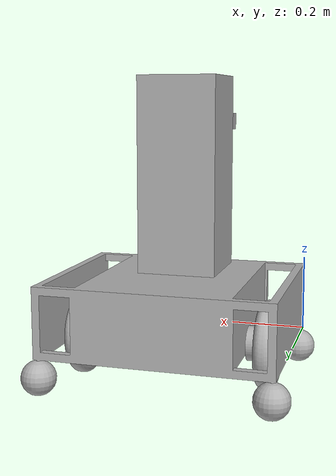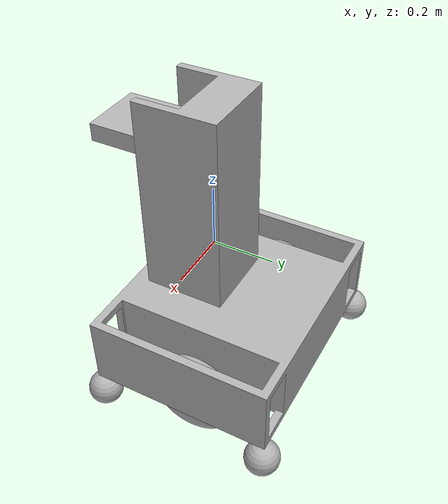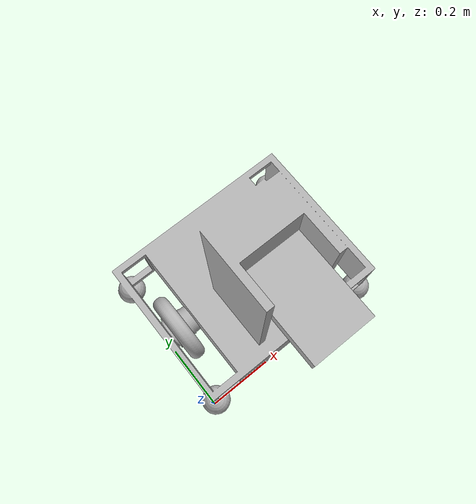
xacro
<?xml version="1.0" ?>
<robot name="walkie2_base" xmlns:xacro="http://www.ros.org/wiki/xacro">

<xacro:include filename="$(find walkie2_base_description)/urdf/materials.xacro" />
<xacro:include filename="$(find walkie2_base_description)/urdf/walkie2_base.trans" />
<xacro:include filename="$(find walkie2_base_description)/urdf/walkie2_base.gazebo" />
<link name="base_link">
  <inertial>
    <origin xyz="0.3001026605889627 0.22105414801576878 0.17274709279612235" rpy="0 0 0"/>
    <mass value="402.481804181889"/>
    <inertia ixx="18.966681" iyy="19.561407" izz="13.651026" ixy="-0.000467" iyz="1.492371" ixz="-0.007281"/>
  </inertial>
  <visual>
    <origin xyz="0 0 0" rpy="0 0 0"/>
    <geometry>
      <mesh filename="package://walkie2_base_description/meshes/base_link.stl" scale="0.001 0.001 0.001"/>
    </geometry>
    <material name="silver"/>
  </visual>
  <collision>
    <origin xyz="0 0 0" rpy="0 0 0"/>
    <geometry>
      <mesh filename="package://walkie2_base_description/meshes/base_link.stl" scale="0.001 0.001 0.001"/>
    </geometry>
  </collision>
</link>

<link name="LM_1">
  <inertial>
    <origin xyz="0.04963466938861183 -1.6375789613221059e-15 5.204170427930421e-17" rpy="0 0 0"/>
    <mass value="16.226883800866556"/>
    <inertia ixx="0.087579" iyy="0.048877" izz="0.048877" ixy="-0.0" iyz="0.0" ixz="0.0"/>
  </inertial>
  <visual>
    <origin xyz="-0.494 -0.25 -0.02" rpy="0 0 0"/>
    <geometry>
      <mesh filename="package://walkie2_base_description/meshes/LM_1.stl" scale="0.001 0.001 0.001"/>
    </geometry>
    <material name="silver"/>
  </visual>
  <collision>
    <origin xyz="-0.494 -0.25 -0.02" rpy="0 0 0"/>
    <geometry>
      <mesh filename="package://walkie2_base_description/meshes/LM_1.stl" scale="0.001 0.001 0.001"/>
    </geometry>
  </collision>
</link>

<link name="RM_1">
  <inertial>
    <origin xyz="-0.04963466938861179 1.609823385706477e-15 5.204170427930421e-17" rpy="0 0 0"/>
    <mass value="16.226883800866556"/>
    <inertia ixx="0.087579" iyy="0.048877" izz="0.048877" ixy="-0.0" iyz="-0.0" ixz="-0.0"/>
  </inertial>
  <visual>
    <origin xyz="-0.106 -0.25 -0.02" rpy="0 0 0"/>
    <geometry>
      <mesh filename="package://walkie2_base_description/meshes/RM_1.stl" scale="0.001 0.001 0.001"/>
    </geometry>
    <material name="silver"/>
  </visual>
  <collision>
    <origin xyz="-0.106 -0.25 -0.02" rpy="0 0 0"/>
    <geometry>
      <mesh filename="package://walkie2_base_description/meshes/RM_1.stl" scale="0.001 0.001 0.001"/>
    </geometry>
  </collision>
</link>

<link name="BaseCR3_1">
  <inertial>
    <origin xyz="0.08222500000000008 -0.12142149999999997 -0.12260000000000004" rpy="0 0 0"/>
    <mass value="14.169925233606987"/>
    <inertia ixx="0.072049" iyy="0.034347" izz="0.101571" ixy="0.0" iyz="0.0" ixz="-0.0"/>
  </inertial>
  <visual>
    <origin xyz="-0.218112 -0.146306 -0.693" rpy="0 0 0"/>
    <geometry>
      <mesh filename="package://walkie2_base_description/meshes/BaseCR3_1.stl" scale="0.001 0.001 0.001"/>
    </geometry>
    <material name="silver"/>
  </visual>
  <collision>
    <origin xyz="-0.218112 -0.146306 -0.693" rpy="0 0 0"/>
    <geometry>
      <mesh filename="package://walkie2_base_description/meshes/BaseCR3_1.stl" scale="0.001 0.001 0.001"/>
    </geometry>
  </collision>
</link>

<joint name="Rev2" type="continuous">
  <origin xyz="0.494 0.25 0.02" rpy="0 0 0"/>
  <parent link="base_link"/>
  <child link="LM_1"/>
  <axis xyz="1.0 0.0 0.0"/>
</joint>

<joint name="Rev3" type="continuous">
  <origin xyz="0.106 0.25 0.02" rpy="0 0 0"/>
  <parent link="base_link"/>
  <child link="RM_1"/>
  <axis xyz="-1.0 0.0 0.0"/>
</joint>

<joint name="Slider12" type="prismatic">
  <origin xyz="0.218112 0.146306 0.693" rpy="0 0 0"/>
  <parent link="base_link"/>
  <child link="BaseCR3_1"/>
  <axis xyz="0.0 0.0 1.0"/>
  <limit upper="0.0" lower="-0.4648" effort="100" velocity="100"/>
</joint>

</robot>

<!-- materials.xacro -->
<robot name="walkie2_base" xmlns:xacro="http://www.ros.org/wiki/xacro" >

<material name="silver">
  <color rgba="0.700 0.700 0.700 1.000"/>
</material>

</robot>

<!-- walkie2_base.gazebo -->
<robot name="walkie2_base" xmlns:xacro="http://www.ros.org/wiki/xacro" >

<xacro:property name="body_color" value="Gazebo/Silver" />

<gazebo>
  <plugin name="control" filename="libgazebo_ros_control.so"/>
</gazebo>
<gazebo reference="base_link">
  <material>${body_color}</material>
  <mu1>0.2</mu1>
  <mu2>0.2</mu2>
  <selfCollide>true</selfCollide>
  <gravity>true</gravity>
</gazebo>

<gazebo reference="LM_1">
  <material>${body_color}</material>
  <mu1>0.2</mu1>
  <mu2>0.2</mu2>
  <selfCollide>true</selfCollide>
</gazebo>

<gazebo reference="RM_1">
  <material>${body_color}</material>
  <mu1>0.2</mu1>
  <mu2>0.2</mu2>
  <selfCollide>true</selfCollide>
</gazebo>

<gazebo reference="BaseCR3_1">
  <material>${body_color}</material>
  <mu1>0.2</mu1>
  <mu2>0.2</mu2>
  <selfCollide>true</selfCollide>
</gazebo>

</robot>
